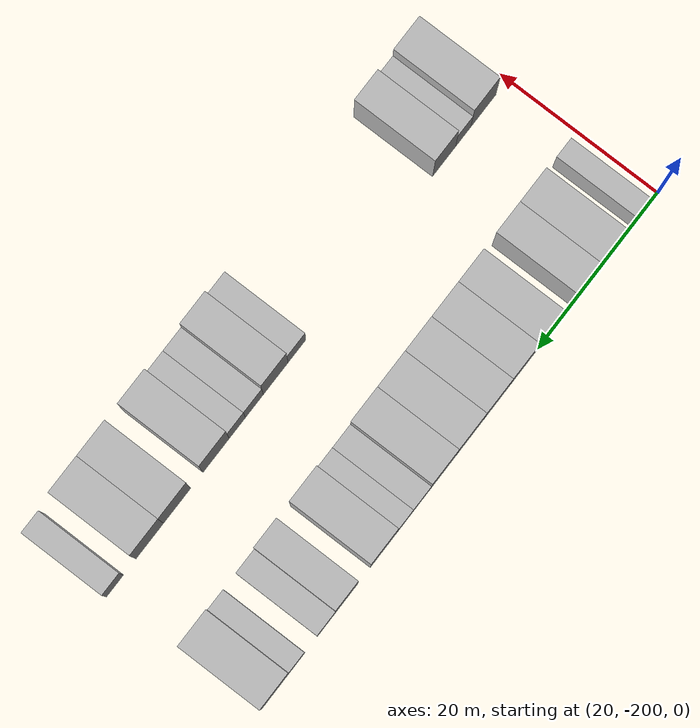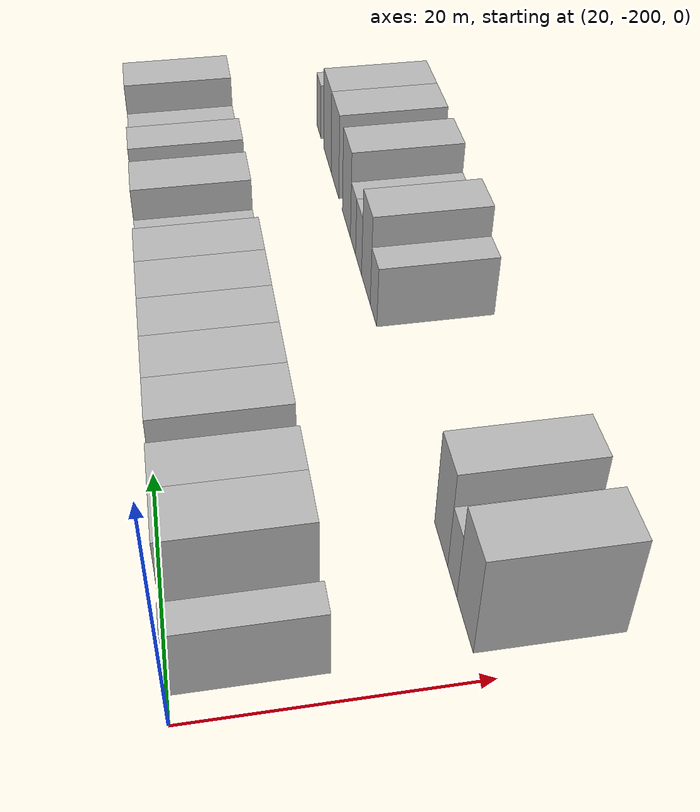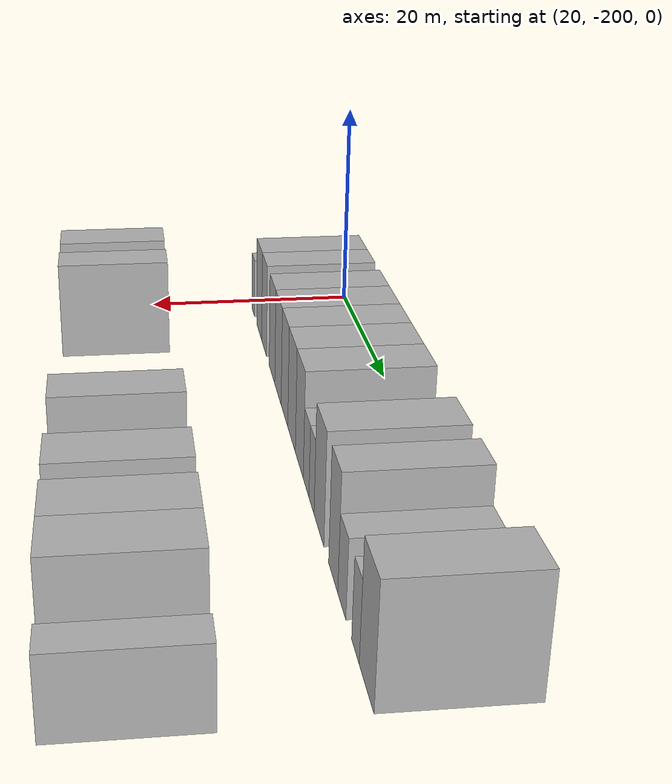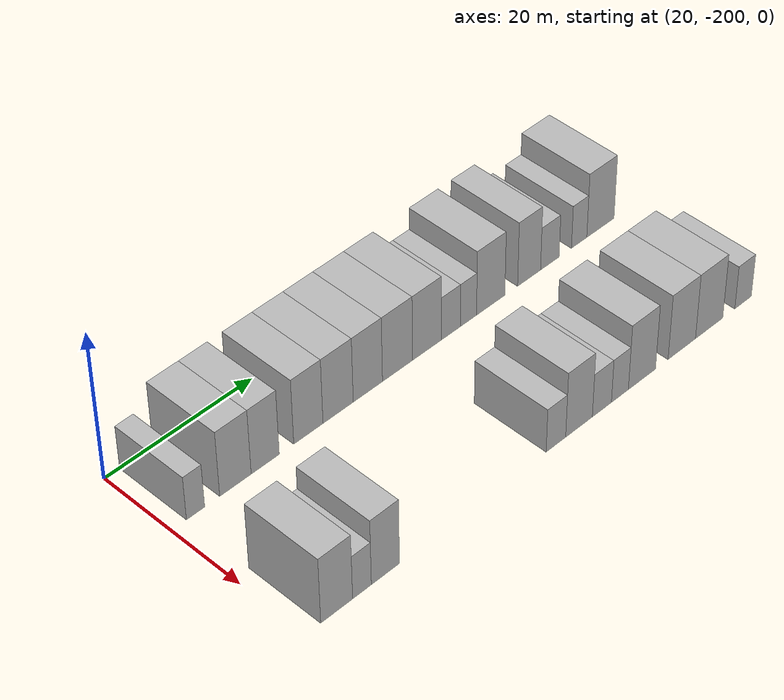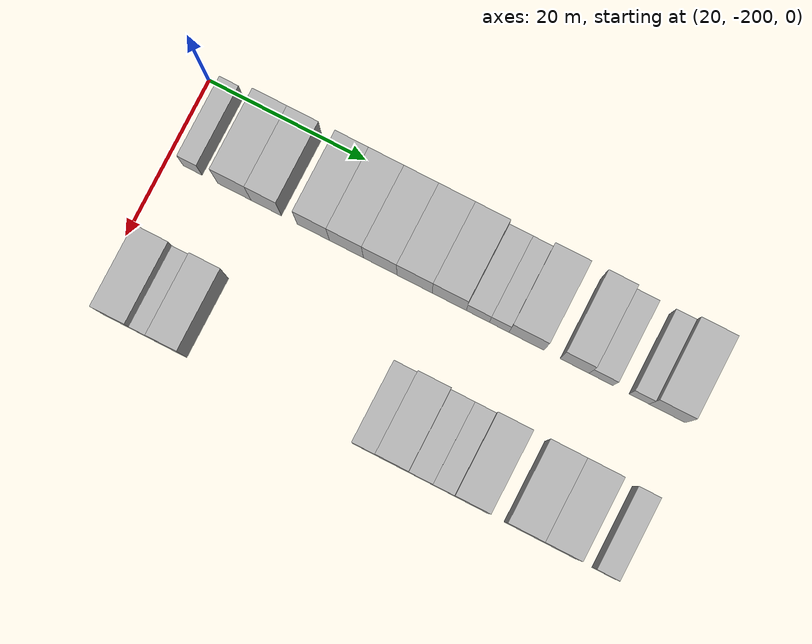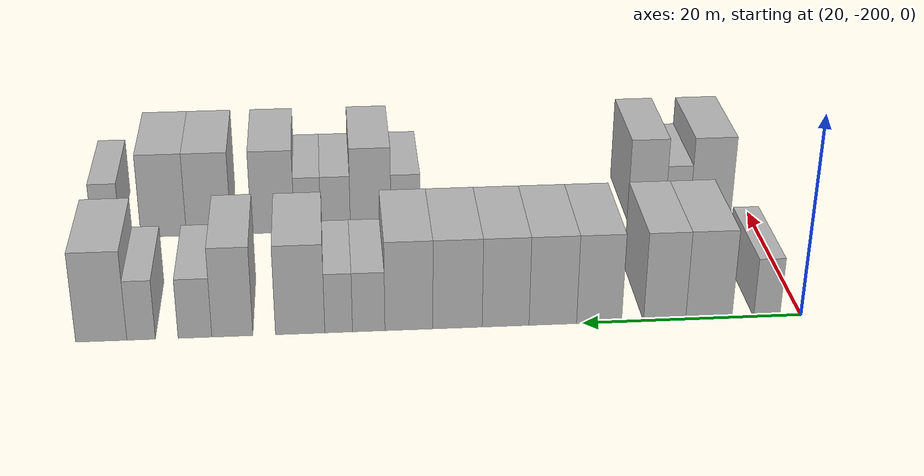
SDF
<sdf version="1.6">
 <world name="default">
  <model name="building_1">
   <static>1</static>
   <pose>25.0000 -196.7966 0 0.000000 0.000000 0.000000</pose>
   <link name="link">
    <pose>0 0 3.00 0 0 0</pose>
    <collision name="collision"><geometry><box><size>10.0000 2.4068 6.0000</size></box></geometry></collision>
    <visual name="visual">
     <cast_shadows>0</cast_shadows>
     <geometry><box><size>10.0000 2.4068 6.0000</size></box></geometry>
     <material>
      <script>
       <uri>model://HANNAS_wall/materials/scripts</uri>
       <uri>model://HANNAS_wall/materials/textures</uri>
       <name>vrc/HANNAS_wall</name>
      </script>
     </material>
    </visual>
   </link>
  </model>
  <model name="building_2">
   <static>1</static>
   <pose>25.0000 -191.4744 0 0.000000 0.000000 0.000000</pose>
   <link name="link">
    <pose>0 0 4.50 0 0 0</pose>
    <collision name="collision"><geometry><box><size>10.0000 4.2375 9.0000</size></box></geometry></collision>
    <visual name="visual">
     <cast_shadows>0</cast_shadows>
     <geometry><box><size>10.0000 4.2375 9.0000</size></box></geometry>
     <material>
      <script>
       <uri>model://HANNAS_wall/materials/scripts</uri>
       <uri>model://HANNAS_wall/materials/textures</uri>
       <name>vrc/HANNAS_wall</name>
      </script>
     </material>
    </visual>
   </link>
  </model>
  <model name="building_3">
   <static>1</static>
   <pose>25.0000 -187.4311 0 0.000000 0.000000 0.000000</pose>
   <link name="link">
    <pose>0 0 4.50 0 0 0</pose>
    <collision name="collision"><geometry><box><size>10.0000 3.8492 9.0000</size></box></geometry></collision>
    <visual name="visual">
     <cast_shadows>0</cast_shadows>
     <geometry><box><size>10.0000 3.8492 9.0000</size></box></geometry>
     <material>
      <script>
       <uri>model://HANNAS_wall/materials/scripts</uri>
       <uri>model://HANNAS_wall/materials/textures</uri>
       <name>vrc/HANNAS_wall</name>
      </script>
     </material>
    </visual>
   </link>
  </model>
  <model name="building_4">
   <static>1</static>
   <pose>25.0000 -181.4593 0 0.000000 0.000000 0.000000</pose>
   <link name="link">
    <pose>0 0 4.50 0 0 0</pose>
    <collision name="collision"><geometry><box><size>10.0000 4.0943 9.0000</size></box></geometry></collision>
    <visual name="visual">
     <cast_shadows>0</cast_shadows>
     <geometry><box><size>10.0000 4.0943 9.0000</size></box></geometry>
     <material>
      <script>
       <uri>model://HANNAS_wall/materials/scripts</uri>
       <uri>model://HANNAS_wall/materials/textures</uri>
       <name>vrc/HANNAS_wall</name>
      </script>
     </material>
    </visual>
   </link>
  </model>
  <model name="building_5">
   <static>1</static>
   <pose>25.0000 -177.2593 0 0.000000 0.000000 0.000000</pose>
   <link name="link">
    <pose>0 0 4.50 0 0 0</pose>
    <collision name="collision"><geometry><box><size>10.0000 4.3057 9.0000</size></box></geometry></collision>
    <visual name="visual">
     <cast_shadows>0</cast_shadows>
     <geometry><box><size>10.0000 4.3057 9.0000</size></box></geometry>
     <material>
      <script>
       <uri>model://HANNAS_wall/materials/scripts</uri>
       <uri>model://HANNAS_wall/materials/textures</uri>
       <name>vrc/HANNAS_wall</name>
      </script>
     </material>
    </visual>
   </link>
  </model>
  <model name="building_6">
   <static>1</static>
   <pose>25.0000 -172.9911 0 0.000000 0.000000 0.000000</pose>
   <link name="link">
    <pose>0 0 4.50 0 0 0</pose>
    <collision name="collision"><geometry><box><size>10.0000 4.2307 9.0000</size></box></geometry></collision>
    <visual name="visual">
     <cast_shadows>0</cast_shadows>
     <geometry><box><size>10.0000 4.2307 9.0000</size></box></geometry>
     <material>
      <script>
       <uri>model://HANNAS_wall/materials/scripts</uri>
       <uri>model://HANNAS_wall/materials/textures</uri>
       <name>vrc/HANNAS_wall</name>
      </script>
     </material>
    </visual>
   </link>
  </model>
  <model name="building_7">
   <static>1</static>
   <pose>25.0000 -168.6613 0 0.000000 0.000000 0.000000</pose>
   <link name="link">
    <pose>0 0 4.50 0 0 0</pose>
    <collision name="collision"><geometry><box><size>10.0000 4.4288 9.0000</size></box></geometry></collision>
    <visual name="visual">
     <cast_shadows>0</cast_shadows>
     <geometry><box><size>10.0000 4.4288 9.0000</size></box></geometry>
     <material>
      <script>
       <uri>model://HANNAS_wall/materials/scripts</uri>
       <uri>model://HANNAS_wall/materials/textures</uri>
       <name>vrc/HANNAS_wall</name>
      </script>
     </material>
    </visual>
   </link>
  </model>
  <model name="building_8">
   <static>1</static>
   <pose>25.0000 -164.3003 0 0.000000 0.000000 0.000000</pose>
   <link name="link">
    <pose>0 0 4.50 0 0 0</pose>
    <collision name="collision"><geometry><box><size>10.0000 4.2933 9.0000</size></box></geometry></collision>
    <visual name="visual">
     <cast_shadows>0</cast_shadows>
     <geometry><box><size>10.0000 4.2933 9.0000</size></box></geometry>
     <material>
      <script>
       <uri>model://HANNAS_wall/materials/scripts</uri>
       <uri>model://HANNAS_wall/materials/textures</uri>
       <name>vrc/HANNAS_wall</name>
      </script>
     </material>
    </visual>
   </link>
  </model>
  <model name="building_9">
   <static>1</static>
   <pose>25.0000 -160.7059 0 0.000000 0.000000 0.000000</pose>
   <link name="link">
    <pose>0 0 3.00 0 0 0</pose>
    <collision name="collision"><geometry><box><size>10.0000 2.8955 6.0000</size></box></geometry></collision>
    <visual name="visual">
     <cast_shadows>0</cast_shadows>
     <geometry><box><size>10.0000 2.8955 6.0000</size></box></geometry>
     <material>
      <script>
       <uri>model://HANNAS_wall/materials/scripts</uri>
       <uri>model://HANNAS_wall/materials/textures</uri>
       <name>vrc/HANNAS_wall</name>
      </script>
     </material>
    </visual>
   </link>
  </model>
  <model name="building_10">
   <static>1</static>
   <pose>25.0000 -158.0257 0 0.000000 0.000000 0.000000</pose>
   <link name="link">
    <pose>0 0 3.00 0 0 0</pose>
    <collision name="collision"><geometry><box><size>10.0000 2.4648 6.0000</size></box></geometry></collision>
    <visual name="visual">
     <cast_shadows>0</cast_shadows>
     <geometry><box><size>10.0000 2.4648 6.0000</size></box></geometry>
     <material>
      <script>
       <uri>model://HANNAS_wall/materials/scripts</uri>
       <uri>model://HANNAS_wall/materials/textures</uri>
       <name>vrc/HANNAS_wall</name>
      </script>
     </material>
    </visual>
   </link>
  </model>
  <model name="building_11">
   <static>1</static>
   <pose>25.0000 -154.6019 0 0.000000 0.000000 0.000000</pose>
   <link name="link">
    <pose>0 0 4.50 0 0 0</pose>
    <collision name="collision"><geometry><box><size>10.0000 4.3829 9.0000</size></box></geometry></collision>
    <visual name="visual">
     <cast_shadows>0</cast_shadows>
     <geometry><box><size>10.0000 4.3829 9.0000</size></box></geometry>
     <material>
      <script>
       <uri>model://HANNAS_wall/materials/scripts</uri>
       <uri>model://HANNAS_wall/materials/textures</uri>
       <name>vrc/HANNAS_wall</name>
      </script>
     </material>
    </visual>
   </link>
  </model>
  <model name="building_12">
   <static>1</static>
   <pose>25.0000 -148.5949 0 0.000000 0.000000 0.000000</pose>
   <link name="link">
    <pose>0 0 4.50 0 0 0</pose>
    <collision name="collision"><geometry><box><size>10.0000 3.6311 9.0000</size></box></geometry></collision>
    <visual name="visual">
     <cast_shadows>0</cast_shadows>
     <geometry><box><size>10.0000 3.6311 9.0000</size></box></geometry>
     <material>
      <script>
       <uri>model://HANNAS_wall/materials/scripts</uri>
       <uri>model://HANNAS_wall/materials/textures</uri>
       <name>vrc/HANNAS_wall</name>
      </script>
     </material>
    </visual>
   </link>
  </model>
  <model name="building_13">
   <static>1</static>
   <pose>25.0000 -145.2932 0 0.000000 0.000000 0.000000</pose>
   <link name="link">
    <pose>0 0 3.00 0 0 0</pose>
    <collision name="collision"><geometry><box><size>10.0000 2.9723 6.0000</size></box></geometry></collision>
    <visual name="visual">
     <cast_shadows>0</cast_shadows>
     <geometry><box><size>10.0000 2.9723 6.0000</size></box></geometry>
     <material>
      <script>
       <uri>model://HANNAS_wall/materials/scripts</uri>
       <uri>model://HANNAS_wall/materials/textures</uri>
       <name>vrc/HANNAS_wall</name>
      </script>
     </material>
    </visual>
   </link>
  </model>
  <model name="building_14">
   <static>1</static>
   <pose>25.0000 -140.5572 0 0.000000 0.000000 0.000000</pose>
   <link name="link">
    <pose>0 0 3.00 0 0 0</pose>
    <collision name="collision"><geometry><box><size>10.0000 2.4997 6.0000</size></box></geometry></collision>
    <visual name="visual">
     <cast_shadows>0</cast_shadows>
     <geometry><box><size>10.0000 2.4997 6.0000</size></box></geometry>
     <material>
      <script>
       <uri>model://HANNAS_wall/materials/scripts</uri>
       <uri>model://HANNAS_wall/materials/textures</uri>
       <name>vrc/HANNAS_wall</name>
      </script>
     </material>
    </visual>
   </link>
  </model>
  <model name="building_15">
   <static>1</static>
   <pose>25.0000 -137.0640 0 0.000000 0.000000 0.000000</pose>
   <link name="link">
    <pose>0 0 4.50 0 0 0</pose>
    <collision name="collision"><geometry><box><size>10.0000 4.4868 9.0000</size></box></geometry></collision>
    <visual name="visual">
     <cast_shadows>0</cast_shadows>
     <geometry><box><size>10.0000 4.4868 9.0000</size></box></geometry>
     <material>
      <script>
       <uri>model://HANNAS_wall/materials/scripts</uri>
       <uri>model://HANNAS_wall/materials/textures</uri>
       <name>vrc/HANNAS_wall</name>
      </script>
     </material>
    </visual>
   </link>
  </model>
  <model name="building_106">
   <static>1</static>
   <pose>44.0000 -195.8919 0 0.000000 0.000000 0.000000</pose>
   <link name="link">
    <pose>0 0 4.50 0 0 0</pose>
    <collision name="collision"><geometry><box><size>10.0000 4.2161 9.0000</size></box></geometry></collision>
    <visual name="visual">
     <cast_shadows>0</cast_shadows>
     <geometry><box><size>10.0000 4.2161 9.0000</size></box></geometry>
     <material>
      <script>
       <uri>model://HANNAS_wall/materials/scripts</uri>
       <uri>model://HANNAS_wall/materials/textures</uri>
       <name>vrc/HANNAS_wall</name>
      </script>
     </material>
    </visual>
   </link>
  </model>
  <model name="building_107">
   <static>1</static>
   <pose>44.0000 -192.5275 0 0.000000 0.000000 0.000000</pose>
   <link name="link">
    <pose>0 0 3.00 0 0 0</pose>
    <collision name="collision"><geometry><box><size>10.0000 2.5127 6.0000</size></box></geometry></collision>
    <visual name="visual">
     <cast_shadows>0</cast_shadows>
     <geometry><box><size>10.0000 2.5127 6.0000</size></box></geometry>
     <material>
      <script>
       <uri>model://HANNAS_wall/materials/scripts</uri>
       <uri>model://HANNAS_wall/materials/textures</uri>
       <name>vrc/HANNAS_wall</name>
      </script>
     </material>
    </visual>
   </link>
  </model>
  <model name="building_108">
   <static>1</static>
   <pose>44.0000 -189.3640 0 0.000000 0.000000 0.000000</pose>
   <link name="link">
    <pose>0 0 4.50 0 0 0</pose>
    <collision name="collision"><geometry><box><size>10.0000 3.8144 9.0000</size></box></geometry></collision>
    <visual name="visual">
     <cast_shadows>0</cast_shadows>
     <geometry><box><size>10.0000 3.8144 9.0000</size></box></geometry>
     <material>
      <script>
       <uri>model://HANNAS_wall/materials/scripts</uri>
       <uri>model://HANNAS_wall/materials/textures</uri>
       <name>vrc/HANNAS_wall</name>
      </script>
     </material>
    </visual>
   </link>
  </model>
  <model name="building_109">
   <static>1</static>
   <pose>44.0000 -165.0842 0 0.000000 0.000000 0.000000</pose>
   <link name="link">
    <pose>0 0 3.00 0 0 0</pose>
    <collision name="collision"><geometry><box><size>10.0000 2.9151 6.0000</size></box></geometry></collision>
    <visual name="visual">
     <cast_shadows>0</cast_shadows>
     <geometry><box><size>10.0000 2.9151 6.0000</size></box></geometry>
     <material>
      <script>
       <uri>model://HANNAS_wall/materials/scripts</uri>
       <uri>model://HANNAS_wall/materials/textures</uri>
       <name>vrc/HANNAS_wall</name>
      </script>
     </material>
    </visual>
   </link>
  </model>
  <model name="building_110">
   <static>1</static>
   <pose>44.0000 -161.6071 0 0.000000 0.000000 0.000000</pose>
   <link name="link">
    <pose>0 0 4.50 0 0 0</pose>
    <collision name="collision"><geometry><box><size>10.0000 4.0391 9.0000</size></box></geometry></collision>
    <visual name="visual">
     <cast_shadows>0</cast_shadows>
     <geometry><box><size>10.0000 4.0391 9.0000</size></box></geometry>
     <material>
      <script>
       <uri>model://HANNAS_wall/materials/scripts</uri>
       <uri>model://HANNAS_wall/materials/textures</uri>
       <name>vrc/HANNAS_wall</name>
      </script>
     </material>
    </visual>
   </link>
  </model>
  <model name="building_111">
   <static>1</static>
   <pose>44.0000 -158.1224 0 0.000000 0.000000 0.000000</pose>
   <link name="link">
    <pose>0 0 3.00 0 0 0</pose>
    <collision name="collision"><geometry><box><size>10.0000 2.9303 6.0000</size></box></geometry></collision>
    <visual name="visual">
     <cast_shadows>0</cast_shadows>
     <geometry><box><size>10.0000 2.9303 6.0000</size></box></geometry>
     <material>
      <script>
       <uri>model://HANNAS_wall/materials/scripts</uri>
       <uri>model://HANNAS_wall/materials/textures</uri>
       <name>vrc/HANNAS_wall</name>
      </script>
     </material>
    </visual>
   </link>
  </model>
  <model name="building_112">
   <static>1</static>
   <pose>44.0000 -155.3445 0 0.000000 0.000000 0.000000</pose>
   <link name="link">
    <pose>0 0 3.00 0 0 0</pose>
    <collision name="collision"><geometry><box><size>10.0000 2.6254 6.0000</size></box></geometry></collision>
    <visual name="visual">
     <cast_shadows>0</cast_shadows>
     <geometry><box><size>10.0000 2.6254 6.0000</size></box></geometry>
     <material>
      <script>
       <uri>model://HANNAS_wall/materials/scripts</uri>
       <uri>model://HANNAS_wall/materials/textures</uri>
       <name>vrc/HANNAS_wall</name>
      </script>
     </material>
    </visual>
   </link>
  </model>
  <model name="building_113">
   <static>1</static>
   <pose>44.0000 -151.8954 0 0.000000 0.000000 0.000000</pose>
   <link name="link">
    <pose>0 0 4.50 0 0 0</pose>
    <collision name="collision"><geometry><box><size>10.0000 4.2728 9.0000</size></box></geometry></collision>
    <visual name="visual">
     <cast_shadows>0</cast_shadows>
     <geometry><box><size>10.0000 4.2728 9.0000</size></box></geometry>
     <material>
      <script>
       <uri>model://HANNAS_wall/materials/scripts</uri>
       <uri>model://HANNAS_wall/materials/textures</uri>
       <name>vrc/HANNAS_wall</name>
      </script>
     </material>
    </visual>
   </link>
  </model>
  <model name="building_114">
   <static>1</static>
   <pose>44.0000 -145.5556 0 0.000000 0.000000 0.000000</pose>
   <link name="link">
    <pose>0 0 4.50 0 0 0</pose>
    <collision name="collision"><geometry><box><size>10.0000 4.4068 9.0000</size></box></geometry></collision>
    <visual name="visual">
     <cast_shadows>0</cast_shadows>
     <geometry><box><size>10.0000 4.4068 9.0000</size></box></geometry>
     <material>
      <script>
       <uri>model://HANNAS_wall/materials/scripts</uri>
       <uri>model://HANNAS_wall/materials/textures</uri>
       <name>vrc/HANNAS_wall</name>
      </script>
     </material>
    </visual>
   </link>
  </model>
  <model name="building_115">
   <static>1</static>
   <pose>44.0000 -141.1200 0 0.000000 0.000000 0.000000</pose>
   <link name="link">
    <pose>0 0 4.50 0 0 0</pose>
    <collision name="collision"><geometry><box><size>10.0000 4.4644 9.0000</size></box></geometry></collision>
    <visual name="visual">
     <cast_shadows>0</cast_shadows>
     <geometry><box><size>10.0000 4.4644 9.0000</size></box></geometry>
     <material>
      <script>
       <uri>model://HANNAS_wall/materials/scripts</uri>
       <uri>model://HANNAS_wall/materials/textures</uri>
       <name>vrc/HANNAS_wall</name>
      </script>
     </material>
    </visual>
   </link>
  </model>
  <model name="building_116">
   <static>1</static>
   <pose>44.0000 -135.5130 0 0.000000 0.000000 0.000000</pose>
   <link name="link">
    <pose>0 0 3.00 0 0 0</pose>
    <collision name="collision"><geometry><box><size>10.0000 2.7496 6.0000</size></box></geometry></collision>
    <visual name="visual">
     <cast_shadows>0</cast_shadows>
     <geometry><box><size>10.0000 2.7496 6.0000</size></box></geometry>
     <material>
      <script>
       <uri>model://HANNAS_wall/materials/scripts</uri>
       <uri>model://HANNAS_wall/materials/textures</uri>
       <name>vrc/HANNAS_wall</name>
      </script>
     </material>
    </visual>
   </link>
  </model>
 </world>
</sdf>
